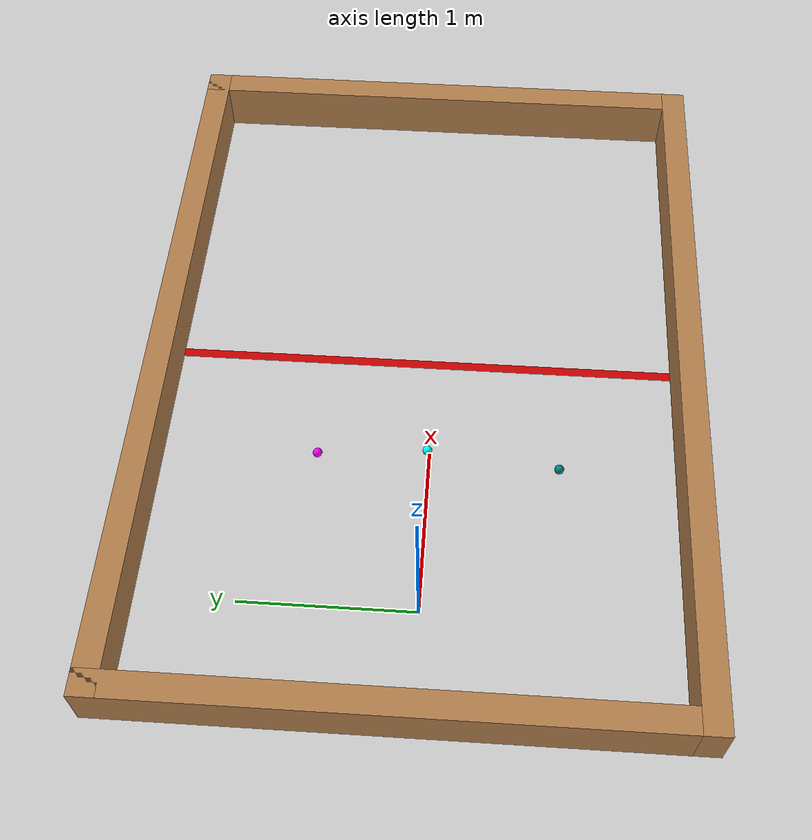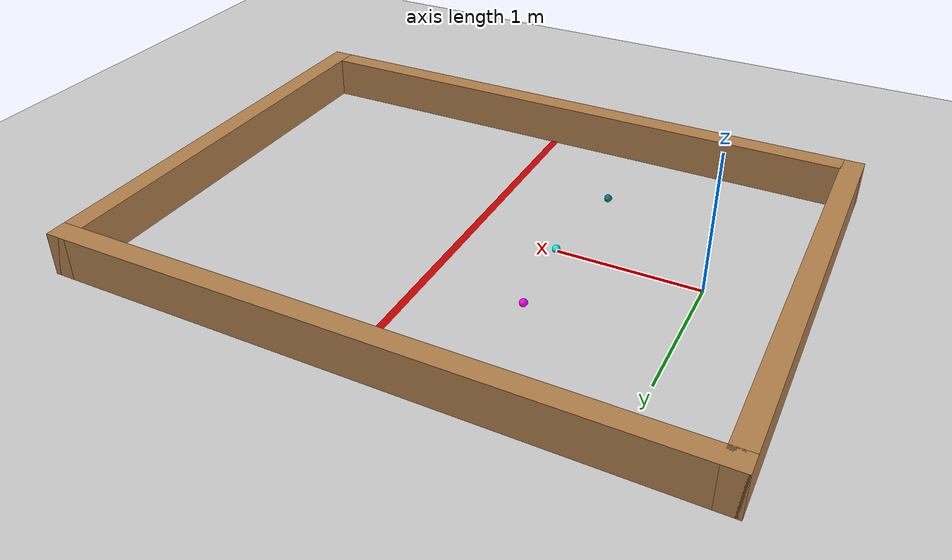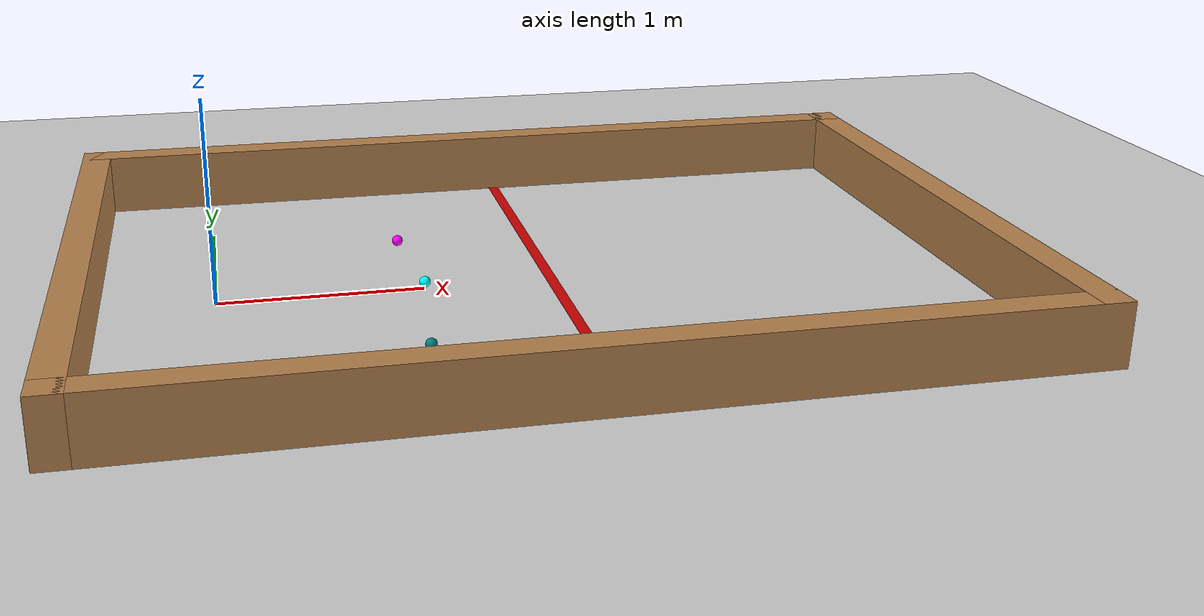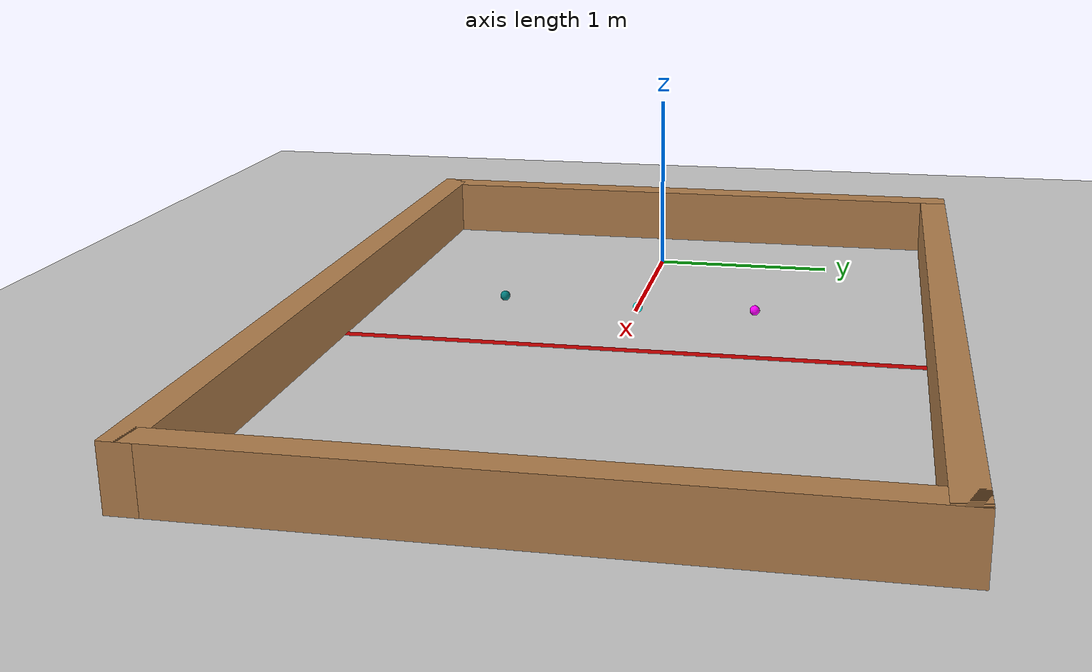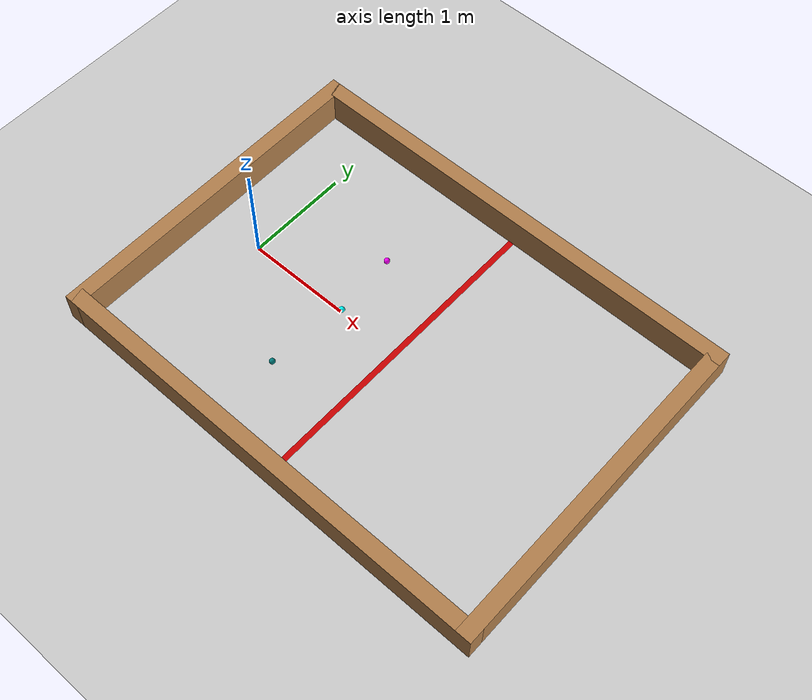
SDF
<sdf version="1.7">
 <world name="default">
  <light name="sun" type="directional">
   <cast_shadows>0</cast_shadows>
   <pose>0 0 10 0 -0 0</pose>
   <diffuse>0.8 0.8 0.8 1</diffuse>
   <specular>0.2 0.2 0.2 1</specular>
   <attenuation>
    <range>1000</range>
    <constant>0.9</constant>
    <linear>0.01</linear>
    <quadratic>0.001</quadratic>
   </attenuation>
   <direction>-0.5 0.1 -0.9</direction>
   <spot><inner_angle>0</inner_angle><outer_angle>0</outer_angle><falloff>0</falloff></spot>
  </light>
  <model name="ground_plane">
   <static>1</static>
   <link name="link">
    <collision name="collision">
     <geometry><plane><normal>0 0 1</normal><size>100 100</size></plane></geometry>
     <surface>
      <contact><collide_bitmask>65535</collide_bitmask></contact>
      <friction><ode><mu>100</mu><mu2>50</mu2></ode></friction>
     </surface>
    </collision>
    <visual name="visual">
     <cast_shadows>0</cast_shadows>
     <geometry><plane><normal>0 0 1</normal><size>100 100</size></plane></geometry>
     <material>
      <script><uri>file://media/materials/scripts/gazebo.material</uri><name>Gazebo/Grey</name></script>
     </material>
    </visual>
   </link>
  </model>
  <gravity>0 0 -9.8</gravity>
  <magnetic_field>6e-06 2.3e-05 -4.2e-05</magnetic_field>
  <atmosphere type="adiabatic"/>
  <physics type="ode">
   <max_step_size>0.001</max_step_size>
   <real_time_factor>1</real_time_factor>
   <real_time_update_rate>1000</real_time_update_rate>
   <ode>
    <solver>
     <iters>150</iters>
     <type>quick</type>
     <sor>1.3</sor>
     <use_dynamic_moi_rescaling>0</use_dynamic_moi_rescaling>
    </solver>
    <constraints>
     <cfm>0</cfm>
     <erp>0.2</erp>
     <contact_max_correcting_vel>100</contact_max_correcting_vel>
     <contact_surface_layer>0.001</contact_surface_layer>
    </constraints>
   </ode>
  </physics>
  <scene><ambient>0.4 0.4 0.4 1</ambient><background>0.7 0.7 0.7 1</background><shadows>0</shadows></scene>
  <spherical_coordinates>
   <surface_model>EARTH_WGS84</surface_model>
   <latitude_deg>0</latitude_deg>
   <longitude_deg>0</longitude_deg>
   <elevation>0</elevation>
   <heading_deg>0</heading_deg>
  </spherical_coordinates>
  <model name="DEB_playground">
   <pose>3.76449 0.063936 0 0 -0 0</pose>
   <link name="Wall_14">
    <collision name="Wall_14_Collision">
     <geometry><box><size>3.3 0.15 0.31</size></box></geometry>
     <pose>0 0 0.155 0 -0 0</pose>
    </collision>
    <visual name="Wall_14_Visual">
     <pose>0 0 0.155 0 -0 0</pose>
     <geometry><box><size>3.3 0.15 0.31</size></box></geometry>
     <material>
      <script><uri>file://media/materials/scripts/gazebo.material</uri><name>Gazebo/Wood</name></script>
      <ambient>1 1 1 1</ambient>
     </material>
     <meta><layer>0</layer></meta>
    </visual>
    <pose>-0.028 0 0 0 -0 -1.5708</pose>
   </link>
   <link name="Wall_16">
    <collision name="Wall_16_Collision">
     <geometry><box><size>4.5 0.15 0.31</size></box></geometry>
     <pose>0 0 0.155 0 -0 0</pose>
    </collision>
    <visual name="Wall_16_Visual">
     <pose>0 0 0.155 0 -0 0</pose>
     <geometry><box><size>4.5 0.15 0.31</size></box></geometry>
     <material>
      <script><uri>file://media/materials/scripts/gazebo.material</uri><name>Gazebo/Wood</name></script>
      <ambient>1 1 1 1</ambient>
     </material>
     <meta><layer>0</layer></meta>
    </visual>
    <pose>-2.203 -1.575 0 0 -0 3.14159</pose>
   </link>
   <link name="Wall_17">
    <collision name="Wall_17_Collision">
     <geometry><box><size>3.3 0.15 0.31</size></box></geometry>
     <pose>0 0 0.155 0 -0 0</pose>
    </collision>
    <visual name="Wall_17_Visual">
     <pose>0 0 0.155 0 -0 0</pose>
     <geometry><box><size>3.3 0.15 0.31</size></box></geometry>
     <material>
      <script><uri>file://media/materials/scripts/gazebo.material</uri><name>Gazebo/Wood</name></script>
      <ambient>1 1 1 1</ambient>
     </material>
     <meta><layer>0</layer></meta>
    </visual>
    <pose>-4.378 0 0 0 -0 1.5708</pose>
   </link>
   <link name="Wall_21">
    <collision name="Wall_21_Collision">
     <geometry><box><size>4.5 0.15 0.31</size></box></geometry>
     <pose>0 0 0.155 0 -0 0</pose>
    </collision>
    <visual name="Wall_21_Visual">
     <pose>0 0 0.155 0 -0 0</pose>
     <geometry><box><size>4.5 0.15 0.31</size></box></geometry>
     <material>
      <script><uri>file://media/materials/scripts/gazebo.material</uri><name>Gazebo/Wood</name></script>
      <ambient>1 1 1 1</ambient>
     </material>
     <meta><layer>0</layer></meta>
    </visual>
    <pose>-2.203 1.575 0 0 -0 0</pose>
   </link>
   <link name="Wall_23">
    <collision name="Wall_23_Collision">
     <geometry><box><size>3.25 0.055 0</size></box></geometry>
     <pose>0 0 0.0025 0 -0 0</pose>
    </collision>
    <visual name="Wall_23_Visual">
     <pose>0 0 0.0025 0 -0 0</pose>
     <geometry><box><size>3.25 0.055 0</size></box></geometry>
     <material>
      <script><uri>file://media/materials/scripts/gazebo.material</uri><name>Gazebo/Grey</name></script>
      <ambient>0.8 0 0 1</ambient>
     </material>
     <meta><layer>0</layer></meta>
    </visual>
    <pose>-2.128 0.025 0 0 -0 -1.5708</pose>
   </link>
   <static>1</static>
  </model>
  <model name="ball_pink">
   <link name="link">
    <inertial>
     <mass>0.005</mass>
     <inertia><ixx>0.0005</ixx><ixy>0</ixy><ixz>0</ixz><iyy>0.0005</iyy><iyz>0</iyz><izz>0.0005</izz></inertia>
    </inertial>
    <pose>0.25888 0 -0.431879 0 -0 0</pose>
    <visual name="visual">
     <geometry><sphere><radius>0.0275</radius></sphere></geometry>
     <material>
      <script><name>Gazebo/Grey</name><uri>file://media/materials/scripts/gazebo.material</uri></script>
      <shader type="pixel"><normal_map>__default__</normal_map></shader>
      <ambient>1 0 1 1</ambient>
      <diffuse>0.7 0.7 0.7 1</diffuse>
      <specular>0.01 0.01 0.01 1</specular>
      <emissive>0 0 0 1</emissive>
     </material>
     <cast_shadows>0</cast_shadows>
    </visual>
    <collision name="collision">
     <geometry><sphere><radius>0.0275</radius></sphere></geometry>
     <surface>
      <friction>
       <ode><mu>0.3</mu><mu2>0.3</mu2><fdir1>0 0 0</fdir1><slip1>0</slip1><slip2>0</slip2></ode>
       <torsional>
        <coefficient>1</coefficient>
        <patch_radius>0</patch_radius>
        <surface_radius>0</surface_radius>
        <use_patch_radius>1</use_patch_radius>
        <ode><slip>0</slip></ode>
       </torsional>
      </friction>
      <bounce><restitution_coefficient>0</restitution_coefficient><threshold>1e+06</threshold></bounce>
      <contact>
       <collide_without_contact>0</collide_without_contact>
       <collide_without_contact_bitmask>1</collide_without_contact_bitmask>
       <collide_bitmask>1</collide_bitmask>
       <ode>
        <soft_cfm>0</soft_cfm>
        <soft_erp>0.2</soft_erp>
        <kp>1e+13</kp>
        <kd>1</kd>
        <max_vel>0.01</max_vel>
        <min_depth>0</min_depth>
       </ode>
       <bullet>
        <split_impulse>1</split_impulse>
        <split_impulse_penetration_threshold>-0.01</split_impulse_penetration_threshold>
        <soft_cfm>0</soft_cfm>
        <soft_erp>0.2</soft_erp>
        <kp>1e+13</kp>
        <kd>1</kd>
       </bullet>
      </contact>
     </surface>
    </collision>
   </link>
   <static>0</static>
   <pose>0.693236 0.656115 0.459379 0 -0 0</pose>
  </model>
  <model name="ball_cyan">
   <link name="link">
    <inertial>
     <mass>0.005</mass>
     <inertia><ixx>0.0005</ixx><ixy>0</ixy><ixz>0</ixz><iyy>0.0005</iyy><iyz>0</iyz><izz>0.0005</izz></inertia>
    </inertial>
    <pose>0.25888 0 -0.431879 0 -0 0</pose>
    <visual name="visual">
     <geometry><sphere><radius>0.0275</radius></sphere></geometry>
     <material>
      <script><name>Gazebo/Grey</name><uri>file://media/materials/scripts/gazebo.material</uri></script>
      <shader type="pixel"><normal_map>__default__</normal_map></shader>
      <ambient>0 1 1 1</ambient>
      <diffuse>0.7 0.7 0.7 1</diffuse>
      <specular>0.01 0.01 0.01 1</specular>
      <emissive>0 0 0 1</emissive>
     </material>
     <cast_shadows>0</cast_shadows>
    </visual>
    <collision name="collision">
     <geometry><sphere><radius>0.0275</radius></sphere></geometry>
     <surface>
      <friction>
       <ode><mu>0.3</mu><mu2>0.3</mu2><fdir1>0 0 0</fdir1><slip1>0</slip1><slip2>0</slip2></ode>
       <torsional>
        <coefficient>1</coefficient>
        <patch_radius>0</patch_radius>
        <surface_radius>0</surface_radius>
        <use_patch_radius>1</use_patch_radius>
        <ode><slip>0</slip></ode>
       </torsional>
      </friction>
      <bounce><restitution_coefficient>0</restitution_coefficient><threshold>1e+06</threshold></bounce>
      <contact>
       <collide_without_contact>0</collide_without_contact>
       <collide_without_contact_bitmask>1</collide_without_contact_bitmask>
       <collide_bitmask>1</collide_bitmask>
       <ode>
        <soft_cfm>0</soft_cfm>
        <soft_erp>0.2</soft_erp>
        <kp>1e+13</kp>
        <kd>1</kd>
        <max_vel>0.01</max_vel>
        <min_depth>0</min_depth>
       </ode>
       <bullet>
        <split_impulse>1</split_impulse>
        <split_impulse_penetration_threshold>-0.01</split_impulse_penetration_threshold>
        <soft_cfm>0</soft_cfm>
        <soft_erp>0.2</soft_erp>
        <kp>1e+13</kp>
        <kd>1</kd>
       </bullet>
      </contact>
     </surface>
    </collision>
   </link>
   <static>0</static>
   <pose>0.74806 0.014389 0.459379 0 -0 0</pose>
  </model>
  <model name="ball_brown">
   <link name="link">
    <inertial>
     <mass>0.005</mass>
     <inertia><ixx>0.0005</ixx><ixy>0</ixy><ixz>0</ixz><iyy>0.0005</iyy><iyz>0</iyz><izz>0.0005</izz></inertia>
    </inertial>
    <pose>0.25888 0 -0.431879 0 -0 0</pose>
    <visual name="visual">
     <geometry><sphere><radius>0.0275</radius></sphere></geometry>
     <material>
      <script><name>Gazebo/Grey</name><uri>file://media/materials/scripts/gazebo.material</uri></script>
      <shader type="pixel"><normal_map>__default__</normal_map></shader>
      <ambient>0 0.5 0.5 1</ambient>
      <diffuse>0.7 0.7 0.7 1</diffuse>
      <specular>0.01 0.01 0.01 1</specular>
      <emissive>0 0 0 1</emissive>
     </material>
     <cast_shadows>0</cast_shadows>
    </visual>
    <collision name="collision">
     <geometry><sphere><radius>0.0275</radius></sphere></geometry>
     <surface>
      <friction>
       <ode><mu>0.3</mu><mu2>0.3</mu2><fdir1>0 0 0</fdir1><slip1>0</slip1><slip2>0</slip2></ode>
       <torsional>
        <coefficient>1</coefficient>
        <patch_radius>0</patch_radius>
        <surface_radius>0</surface_radius>
        <use_patch_radius>1</use_patch_radius>
        <ode><slip>0</slip></ode>
       </torsional>
      </friction>
      <bounce><restitution_coefficient>0</restitution_coefficient><threshold>1e+06</threshold></bounce>
      <contact>
       <collide_without_contact>0</collide_without_contact>
       <collide_without_contact_bitmask>1</collide_without_contact_bitmask>
       <collide_bitmask>1</collide_bitmask>
       <ode>
        <soft_cfm>0</soft_cfm>
        <soft_erp>0.2</soft_erp>
        <kp>1e+13</kp>
        <kd>1</kd>
        <max_vel>0.01</max_vel>
        <min_depth>0</min_depth>
       </ode>
       <bullet>
        <split_impulse>1</split_impulse>
        <split_impulse_penetration_threshold>-0.01</split_impulse_penetration_threshold>
        <soft_cfm>0</soft_cfm>
        <soft_erp>0.2</soft_erp>
        <kp>1e+13</kp>
        <kd>1</kd>
       </bullet>
      </contact>
     </surface>
    </collision>
   </link>
   <static>0</static>
   <pose>0.667519 -0.758848 0.459379 0 -0 0</pose>
  </model>
 </world>
</sdf>
